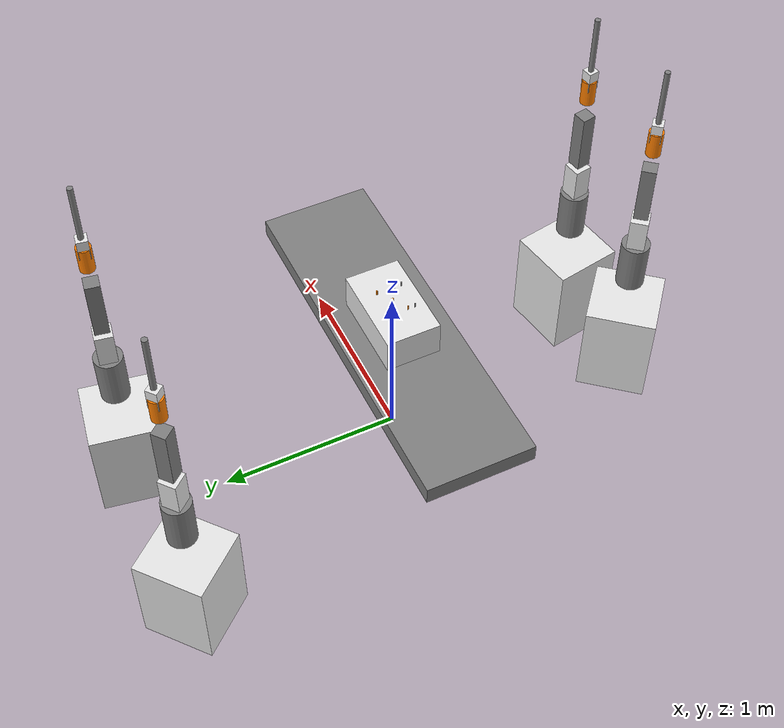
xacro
<?xml version="1.0"?>
<robot xmlns:xacro="http://www.ros.org/wiki/xacro" name="hugo_complete">

  <!-- Include materials -->
  <xacro:include filename="$(find hugo_robot)/urdf/materials.xacro"/>

  <!-- World/Base link (reference frame) -->
  <link name="world"/>

  <!-- Surgical table -->
  <joint name="world_to_table" type="fixed">
    <parent link="world"/>
    <child link="surgical_table"/>
    <origin xyz="0 0 0.75" rpy="0 0 0"/>
  </joint>

  <link name="surgical_table">
    <visual>
      <geometry>
        <box size="2.0 0.6 0.1"/>
      </geometry>
      <material name="gray"/>
    </visual>
    <collision>
      <geometry>
        <box size="2.0 0.6 0.1"/>
      </geometry>
    </collision>
  </link>

  <!-- Patient body (simple representation) -->
  <joint name="table_to_patient" type="fixed">
    <parent link="surgical_table"/>
    <child link="patient_body"/>
    <origin xyz="0 0 0.15" rpy="0 0 0"/>
  </joint>

  <link name="patient_body">
    <visual>
      <geometry>
        <box size="0.5 0.3 0.2"/>
      </geometry>
      <material name="white"/>
    </visual>
  </link>

  <!-- Trocar port placements - "Straight" configuration -->
  <!-- Port 1: Right lateral (8mm) -->
  <joint name="patient_to_port1_straight" type="fixed">
    <parent link="patient_body"/>
    <child link="port1_straight"/>
    <origin xyz="0.08 -0.05 0.1" rpy="0 0 0"/>
  </joint>

  <link name="port1_straight">
    <visual>
      <geometry>
        <cylinder radius="0.004" length="0.05"/>
      </geometry>
      <material name="orange"/>
    </visual>
  </link>

  <!-- Port 2: Transumbilical - Camera (12mm) -->
  <joint name="patient_to_port2_straight" type="fixed">
    <parent link="patient_body"/>
    <child link="port2_straight"/>
    <origin xyz="0 0 0.1" rpy="0 0 0"/>
  </joint>

  <link name="port2_straight">
    <visual>
      <geometry>
        <cylinder radius="0.006" length="0.05"/>
      </geometry>
      <material name="orange"/>
    </visual>
  </link>

  <!-- Port 3: Left lateral (8mm) -->
  <joint name="patient_to_port3_straight" type="fixed">
    <parent link="patient_body"/>
    <child link="port3_straight"/>
    <origin xyz="-0.08 -0.05 0.1" rpy="0 0 0"/>
  </joint>

  <link name="port3_straight">
    <visual>
      <geometry>
        <cylinder radius="0.004" length="0.05"/>
      </geometry>
      <material name="orange"/>
    </visual>
  </link>

  <!-- Port 4: Right flank (8mm) -->
  <joint name="patient_to_port4_straight" type="fixed">
    <parent link="patient_body"/>
    <child link="port4_straight"/>
    <origin xyz="0.08 0.05 0.1" rpy="0 0 0"/>
  </joint>

  <link name="port4_straight">
    <visual>
      <geometry>
        <cylinder radius="0.004" length="0.05"/>
      </geometry>
      <material name="orange"/>
    </visual>
  </link>

  <!-- Trocar port placements - "Bridge" configuration -->
  <!-- Ports 1 & 3 positioned 4cm lower for deeper access -->
  <joint name="patient_to_port1_bridge" type="fixed">
    <parent link="patient_body"/>
    <child link="port1_bridge"/>
    <origin xyz="0.08 -0.09 0.1" rpy="0 0 0"/>
  </joint>

  <link name="port1_bridge">
    <visual>
      <geometry>
        <cylinder radius="0.004" length="0.05"/>
      </geometry>
      <material name="gray"/>
    </visual>
  </link>

  <joint name="patient_to_port3_bridge" type="fixed">
    <parent link="patient_body"/>
    <child link="port3_bridge"/>
    <origin xyz="-0.08 -0.09 0.1" rpy="0 0 0"/>
  </joint>

  <link name="port3_bridge">
    <visual>
      <geometry>
        <cylinder radius="0.004" length="0.05"/>
      </geometry>
      <material name="gray"/>
    </visual>
  </link>

  <!-- Macro for creating arm cart at specific position/angle -->
  <xacro:macro name="hugo_arm" params="prefix x y angle">

    <!-- Position arm cart -->
    <joint name="world_to_${prefix}" type="fixed">
      <parent link="world"/>
      <child link="${prefix}_base"/>
      <origin xyz="${x} ${y} 0" rpy="0 0 ${angle}"/>
    </joint>

    <!-- Arm structure (6 DOF) -->
    <link name="${prefix}_base">
      <visual>
        <geometry>
          <box size="0.4 0.4 0.6"/>
        </geometry>
        <material name="white"/>
      </visual>
      <inertial>
        <mass value="25.0"/>
        <inertia ixx="2.0" ixy="0" ixz="0" iyy="2.0" iyz="0" izz="1.5"/>
      </inertial>
    </link>

    <joint name="${prefix}_joint1" type="revolute">
      <parent link="${prefix}_base"/>
      <child link="${prefix}_link1"/>
      <origin xyz="0 0 0.6" rpy="0 0 0"/>
      <axis xyz="0 0 1"/>
      <limit lower="-3.14" upper="3.14" effort="100" velocity="1.0"/>
    </joint>

    <link name="${prefix}_link1">
      <visual>
        <geometry>
          <cylinder radius="0.08" length="0.3"/>
        </geometry>
        <material name="gray"/>
      </visual>
      <inertial>
        <mass value="5.0"/>
        <inertia ixx="0.1" ixy="0" ixz="0" iyy="0.1" iyz="0" izz="0.05"/>
      </inertial>
    </link>

    <joint name="${prefix}_joint2" type="revolute">
      <parent link="${prefix}_link1"/>
      <child link="${prefix}_link2"/>
      <origin xyz="0 0 0.15" rpy="0 0 0"/>
      <axis xyz="0 1 0"/>
      <limit lower="-1.57" upper="1.57" effort="80" velocity="1.0"/>
    </joint>

    <link name="${prefix}_link2">
      <visual>
        <geometry>
          <box size="0.1 0.1 0.4"/>
        </geometry>
        <material name="white"/>
      </visual>
      <inertial>
        <mass value="4.0"/>
        <inertia ixx="0.08" ixy="0" ixz="0" iyy="0.08" iyz="0" izz="0.02"/>
      </inertial>
    </link>

    <joint name="${prefix}_joint3" type="revolute">
      <parent link="${prefix}_link2"/>
      <child link="${prefix}_link3"/>
      <origin xyz="0 0 0.4" rpy="0 0 0"/>
      <axis xyz="0 1 0"/>
      <limit lower="-2.0" upper="2.0" effort="60" velocity="1.0"/>
    </joint>

    <link name="${prefix}_link3">
      <visual>
        <geometry>
          <box size="0.08 0.08 0.35"/>
        </geometry>
        <material name="gray"/>
      </visual>
      <inertial>
        <mass value="3.0"/>
        <inertia ixx="0.05" ixy="0" ixz="0" iyy="0.05" iyz="0" izz="0.01"/>
      </inertial>
    </link>

    <joint name="${prefix}_joint4" type="revolute">
      <parent link="${prefix}_link3"/>
      <child link="${prefix}_link4"/>
      <origin xyz="0 0 0.35" rpy="0 0 0"/>
      <axis xyz="0 0 1"/>
      <limit lower="-3.14" upper="3.14" effort="40" velocity="1.5"/>
    </joint>

    <link name="${prefix}_link4">
      <visual>
        <geometry>
          <cylinder radius="0.04" length="0.15"/>
        </geometry>
        <material name="orange"/>
      </visual>
      <inertial>
        <mass value="1.5"/>
        <inertia ixx="0.02" ixy="0" ixz="0" iyy="0.02" iyz="0" izz="0.005"/>
      </inertial>
    </link>

    <joint name="${prefix}_joint5" type="revolute">
      <parent link="${prefix}_link4"/>
      <child link="${prefix}_link5"/>
      <origin xyz="0 0 0.075" rpy="0 0 0"/>
      <axis xyz="0 1 0"/>
      <limit lower="-1.57" upper="1.57" effort="30" velocity="1.5"/>
    </joint>

    <link name="${prefix}_link5">
      <visual>
        <geometry>
          <box size="0.06 0.06 0.12"/>
        </geometry>
        <material name="white"/>
      </visual>
      <inertial>
        <mass value="1.0"/>
        <inertia ixx="0.01" ixy="0" ixz="0" iyy="0.01" iyz="0" izz="0.005"/>
      </inertial>
    </link>

    <joint name="${prefix}_joint6" type="revolute">
      <parent link="${prefix}_link5"/>
      <child link="${prefix}_end_effector"/>
      <origin xyz="0 0 0.12" rpy="0 0 0"/>
      <axis xyz="0 0 1"/>
      <limit lower="-3.14" upper="3.14" effort="20" velocity="2.0"/>
    </joint>

    <link name="${prefix}_end_effector">
      <visual>
        <geometry>
          <cylinder radius="0.015" length="0.54"/>
        </geometry>
        <material name="gray"/>
      </visual>
      <inertial>
        <mass value="0.3"/>
        <inertia ixx="0.008" ixy="0" ixz="0" iyy="0.008" iyz="0" izz="0.0001"/>
      </inertial>
    </link>

  </xacro:macro>

  <!-- Instantiate 4 arms in "Compact" configuration -->
  <!-- Positions approximated - arms around 1.5m from table center -->

  <!-- Arm 1: Front right (100° in compact, ~1.74 rad) -->
  <xacro:hugo_arm prefix="arm1" x="0.5" y="-1.4" angle="1.74"/>

  <!-- Arm 2: Camera arm, front center (140° = 2.44 rad) -->
  <xacro:hugo_arm prefix="arm2" x="0" y="-1.5" angle="2.44"/>

  <!-- Arm 3: Back left (220° = 3.84 rad) -->
  <xacro:hugo_arm prefix="arm3" x="-0.5" y="1.4" angle="3.84"/>

  <!-- Arm 4: Back right (260° = 4.54 rad) -->
  <xacro:hugo_arm prefix="arm4" x="0.5" y="1.4" angle="4.54"/>

</robot>

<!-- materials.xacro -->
<robot xmlns:xacro="http://www.ros.org/wiki/xacro">

  <!-- White for arm cart base -->
  <material name="white">
    <color rgba="0.9 0.9 0.9 1.0"/>
  </material>

  <!-- Gray for joints -->
  <material name="gray">
    <color rgba="0.5 0.5 0.5 1.0"/>
  </material>

  <!-- Orange for accent (Medtronic brand) -->
  <material name="orange">
    <color rgba="1.0 0.5 0.0 1.0"/>
  </material>

</robot>
